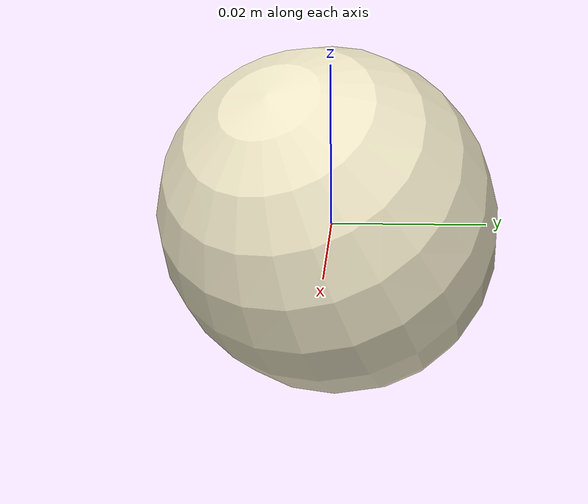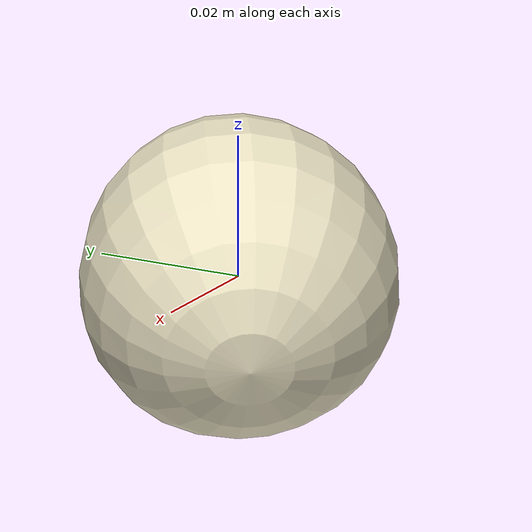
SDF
<?xml version="1.0"?>
<sdf version="1.7">
  <model name="cotton_pick_E_03">
    <static>false</static>
    <allow_auto_disable>false</allow_auto_disable>
    <link name="cotton_pick_E_03_link">
      <gravity>false</gravity>
      <inertial>
        <mass>0.01200</mass>
        <inertia>
          <ixx>0.00000135</ixx><iyy>0.00000135</iyy><izz>0.00000135</izz>
          <ixy>0</ixy><ixz>0</ixz><iyz>0</iyz>
        </inertia>
      </inertial>
      <visual name="cotton_pick_E_03_visual">
        <geometry><mesh><uri>model://cotton_pick_E_03/meshes/cotton_pick_E_03.dae</uri></mesh></geometry>
      </visual>
      <collision name="cotton_pick_E_03_sphere_collision">
        <geometry><sphere><radius>0.01680</radius></sphere></geometry>
        <surface>
          <friction><ode><mu>1.6</mu><mu2>1.6</mu2></ode></friction>
          <contact><ode><kp>8000</kp><kd>80</kd></ode></contact>
        </surface>
      </collision>
    </link>
  </model>
</sdf>
